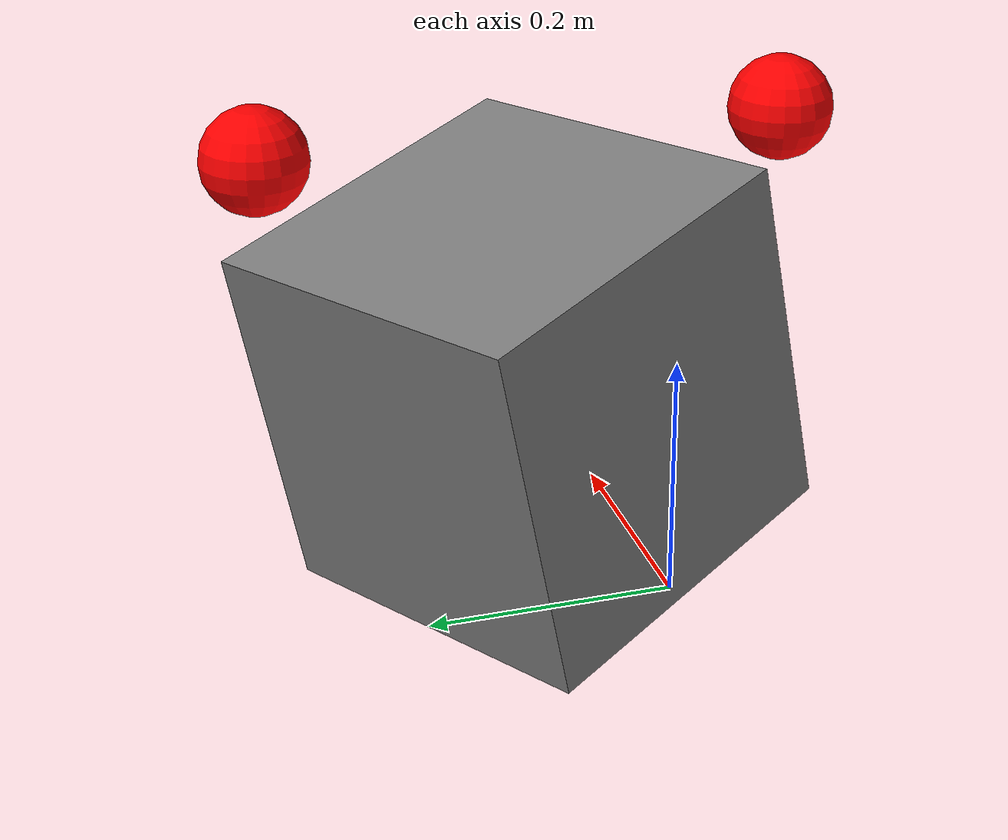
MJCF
<?xml version="1.0"?>
<mujoco model="largebox">
  <compiler angle="radian" meshdir="." texturedir="."/>
  <option gravity="0 0 -9.81"/>

  <asset>
    <mesh name="largebox_mesh" file="largebox.obj"/>
  </asset>

  <worldbody>
    <body name="largebox" pos="0.4 0.0 0.0">
      <freejoint name="largebox_root"/>
      <inertial mass="0.1" pos="0 0 0" diaginertia="0.002 0.002 0.002"/>

      <site name="largebox_root" pos="0 0 0" size="0.02" rgba="1 0 0 1"/>
      <site name="left_hand_contact" pos="0.0 -0.25 0.25" size="0.05" rgba="1 0 0 1"/>
      <site name="right_hand_contact" pos="0.0 0.25 0.25" size="0.05" rgba="1 0 0 1"/>

      <geom type="box" size="0.18 0.18 0.18" pos="0.0 0.0 0" quat="0.95 -0.1 0 0.25"/>
    </body>
  </worldbody>

  <sensor>
    <framepos name="largebox_pos" objtype="xbody" objname="largebox"/>
    <framequat name="largebox_quat" objtype="xbody" objname="largebox"/>
  </sensor>
</mujoco>
